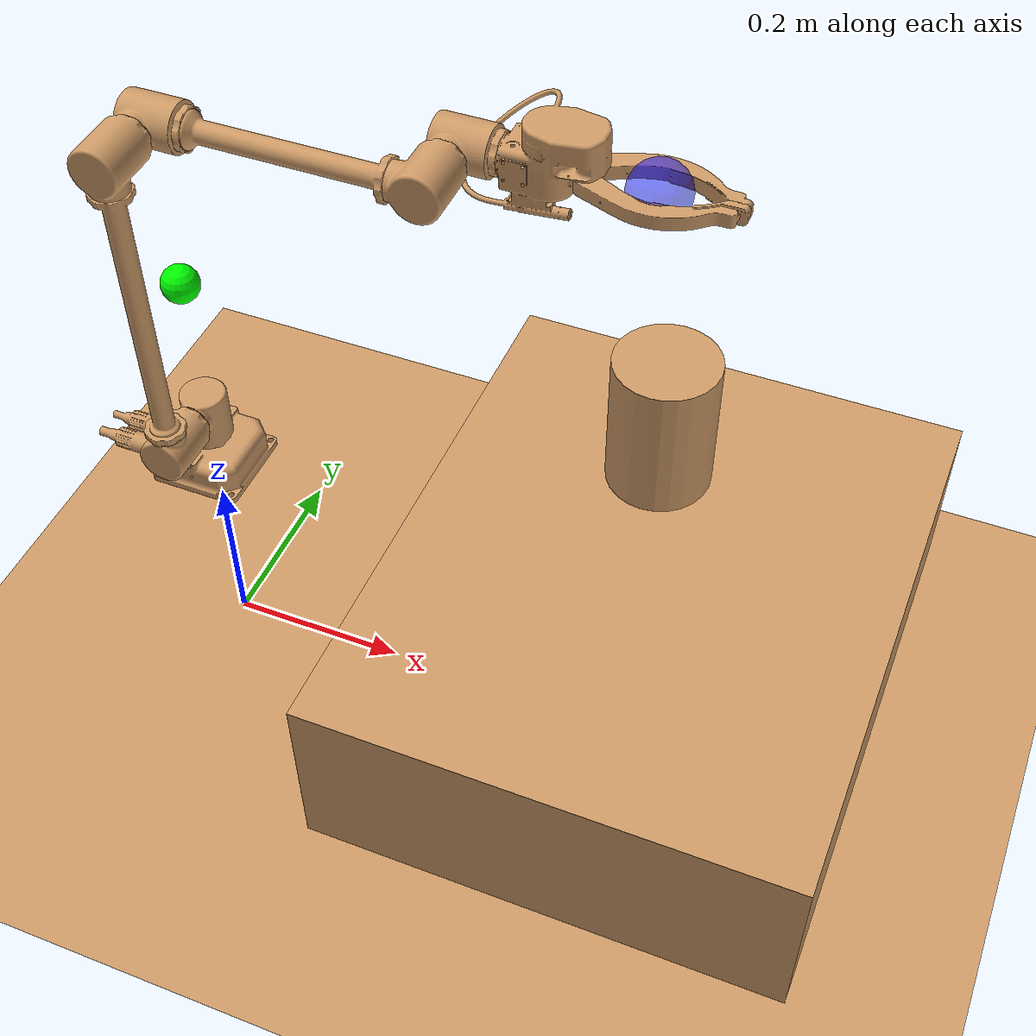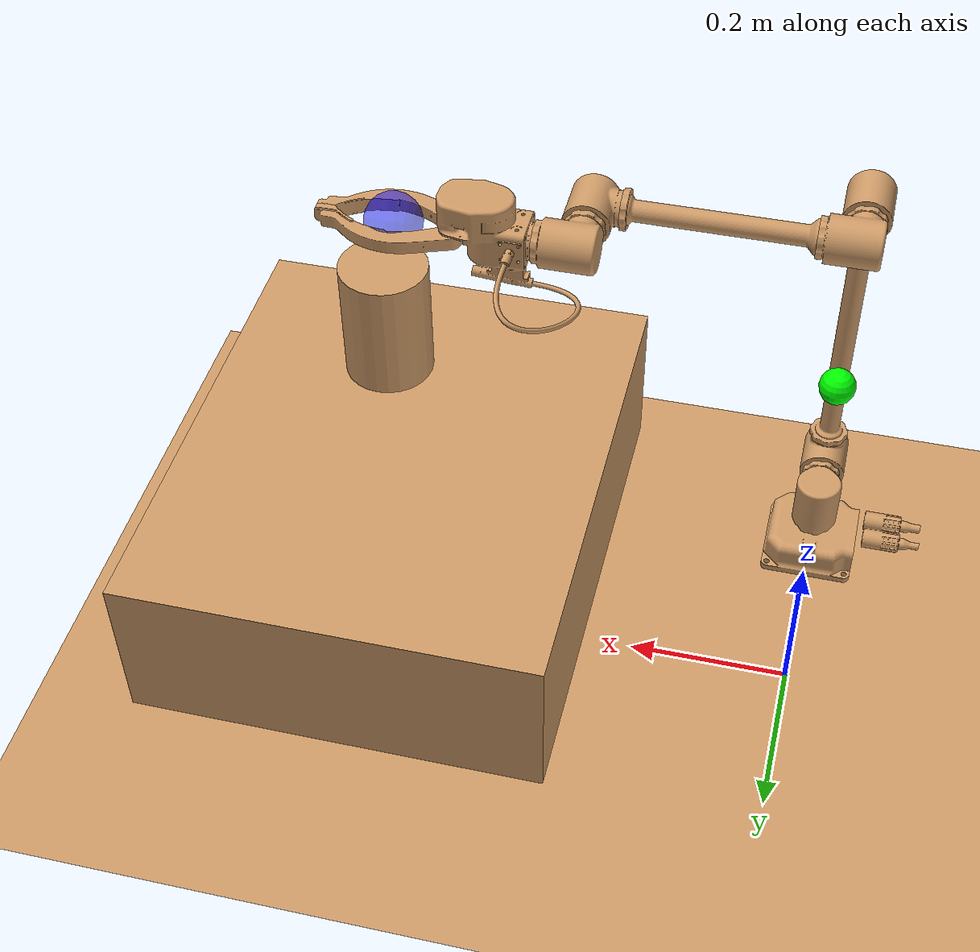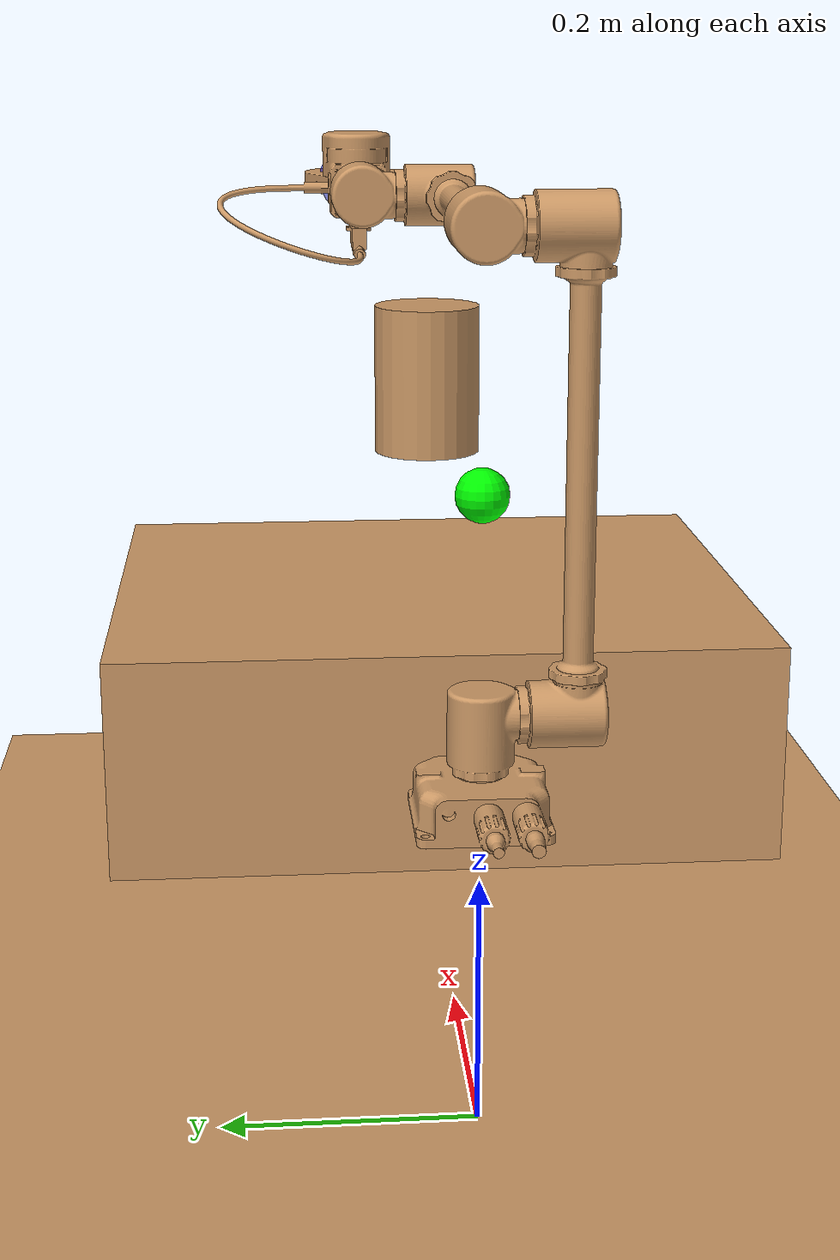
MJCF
<?xml version="1.0" encoding="utf-8"?>
<mujoco>
	<compiler angle="radian" coordinate="local" meshdir="./meshes" texturedir="./textures"></compiler>

	<option timestep="2e-3"
			iterations="10"
			tolerance="1e-10"
			impratio="10"
			gravity="0 0 -9.81"
			solver="Newton"
			cone="elliptic" />
	<size nuserdata="100" njmax="500" nconmax="1000" nstack="600000" nuser_body="9" nuser_jnt="1" nuser_site="1" nuser_tendon="1" nuser_actuator="12" nuser_sensor="1" />

	<visual>
		<map fogstart="3" fogend="5" force="0.1" znear="0.1"/>
		<quality shadowsize="2048" offsamples="8"/>
		<global offwidth="800" offheight="800"/>
	</visual>

	<include file="shared.xml"></include>

	<worldbody>

		<geom name="floor0" pos="0. 0. 0." size="3 3 .125" type="plane" condim="3" material="floorplane"></geom>
		<body name="floor0" pos="0. 0. 0.0">
			<site name="target0" pos="0 0 0.5" size="0.02 0.02 0.02" rgba="0 1 0 1" type="sphere"></site>
		</body>

        <camera name="track" mode="trackcom" pos="0 -3 0.3" xyaxes="1 0 0 0 0 1"/>

		<include file="robot_fixed.xml"></include>

		<body pos="0.5 -0. 0.2" name="table0">
			<geom size="0.25 0.3 0.1" type="box" mass="2000" material="table_mat"></geom>
			<geom size="0.25 0.3 0.1" type="box" mass="2000" group="1" material="table_mat"></geom>
		</body>

		<body name="object0" pos="0.5 -0. 0.5">
			<joint name="object0:joint" type="free" damping="0.01"></joint>
			<geom size="0.05 0.07" type="cylinder" contype='1' conaffinity='1' margin='0.001' solimp='0.99 0.99 0.01' solref='0.01 1' condim="4" name="object0_visual" material="block_mat" mass="2" group="1" friction="1 .001 .001" ></geom>
			<geom size="0.05 0.07" type="cylinder" contype='1' conaffinity='1' margin='0.001' solimp='0.99 0.99 0.01' solref='0.01 1' condim="4" name="object0_collision" material="block_mat" mass="2" group="0" friction="1 .001 .001" ></geom>

			<site name="object0" pos="0 0 0" size="0.02 0.02 0.02" rgba="1 0 0 1" type="sphere"></site>
		</body>

		<light directional="true" ambient="0.2 0.2 0.2" diffuse="0.8 0.8 0.8" specular="0.3 0.3 0.3" castshadow="false" pos="0 0 4" dir="0 0 -1" name="light0"></light>

	</worldbody>

    <actuator>
      <position ctrllimited="true" ctrlrange="-2.0000 2.0000" joint="hdt_drive1_joint" kp="10000"/>
      <position ctrllimited="true" ctrlrange="-1.5708 1.5708" joint="hdt_drive2_joint" kp="20000"/>
      <position ctrllimited="true" ctrlrange="-3.0708 1.2708" joint="hdt_drive3_joint" kp="20000"/>
      <position ctrllimited="true" ctrlrange="-2.5708 2.5708" joint="hdt_drive4_joint" kp="5000"/>
      <position ctrllimited="true" ctrlrange="-1.5708 1.5708" joint="hdt_drive5_joint" kp="5000"/>
      <position ctrllimited="true" ctrlrange="-1.5708 2.5708" joint="hdt_drive6_joint" kp="5000"/>

        <!--Gripper-->
        <!-- position control mode -->
        <position name='finger_1' ctrllimited="true" kp="50" joint='hdt_pincer_joint1' ctrlrange='0 0.5'/>
        <position name='finger_2' ctrllimited="true" kp="50" joint='hdt_pincer_joint2' ctrlrange='0 0.5'/>

        <!-- force control mode -->

    </actuator>

</mujoco>

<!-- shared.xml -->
<mujoco>
    <asset>
        <texture builtin="gradient" height="256" rgb1=".9 .9 1." rgb2=".2 .3 .4" type="skybox" width="256"/>
        <texture builtin="checker" height="512" name="texplane" rgb1=".2 .3 .4" rgb2=".1 0.15 0.2" type="2d" width="512"/>
        <material name="floorplane" reflectance="0.5" texrepeat="1 1" texture="texplane" texuniform="true"/>

        <texture builtin="flat" height="1278" mark="cross" markrgb="1 1 1" name="texgeom" random="0.01" rgb1="0.8 0.6 0.4" rgb2="0.8 0.6 0.4" type="cube" width="127"/>
        <texture type="skybox" builtin="gradient" rgb1="0.44 0.85 0.56" rgb2="0.46 0.87 0.58" width="32" height="32"></texture>
        <texture name="texture_block" file="block.png" gridsize="3 4" gridlayout=".U..LFRB.D.."></texture>

        <material name="floor_mat" specular="0" shininess="0.5" reflectance="0" rgba="0.2 0.2 0.2 1"></material>
        <material name="table_mat" specular="0" shininess="0.5" reflectance="0" rgba="0.93 0.93 0.93 1"></material>
        <material name="block_mat" specular="0" shininess="0.5" reflectance="0" rgba="0.2 0.2 0.2 1"></material>
        <material name="puck_mat" specular="0" shininess="0.5" reflectance="0" rgba="0.2 0.2 0.2 1"></material>
        <material name="MatPlane" reflectance="0.5" shininess="1" specular="1" texrepeat="60 60" texture="texplane"/>
        <material name="geom" texture="texgeom" texuniform="true"/>
        <material name="robot0:geomMat" shininess="0.03" specular="0.4"></material>

        <mesh name="H026994 - A35 M-2 PEDESTAL ASSY - SHAREABLE" file="H026994 - A35 M-2 PEDESTAL ASSY - SHAREABLE.STL" />
        <mesh name="H024840 - A35 M-2 DRIVE MODULE, SHAREABLE" file="H024840 - A35 M-2 DRIVE MODULE, SHAREABLE.STL" />
        <mesh name="H024847 - A35 M-2 PROXIMAL TUBE ASSY - SHAREABLE" file="H024847 - A35 M-2 PROXIMAL TUBE ASSY - SHAREABLE.STL" />
        <mesh name="H024848 - A35 M-2 DISTAL TUBE ASSY - SHAREABLE" file="H024848 - A35 M-2 DISTAL TUBE ASSY - SHAREABLE.STL" />
        <mesh name="H024842 - A35 M-2 PINCER ASSY - SHAREABLE, UNDERWATER" file="H024842 - A35 M-2 PINCER ASSY - SHAREABLE, UNDERWATER.STL" />
        <mesh name="H022927 - A35 PINCER FINGER, LONG, OVERMOLD ASSY - SHAREABLE" file="H022927 - A35 PINCER FINGER, LONG, OVERMOLD ASSY - SHAREABLE.STL" />

    </asset>

    <equality>
    <!-- contrl the end-effector using mocap body, cartesion control -->
    <!-- TODO: thumb_base need to change -->
    </equality>

    <contact>
        <exclude body1="robot0:base_link" body2="drive1_link"></exclude>
        <exclude body1="drive1_link" body2="drive2_link"></exclude>
        <exclude body1="drive2_link" body2="drive3_link"></exclude>
        <exclude body1="drive3_link" body2="drive4_link"></exclude>
        <exclude body1="drive4_link" body2="drive5_link"></exclude>
        <exclude body1="drive5_link" body2="ee_link"></exclude>
        <exclude body1="ee_link" body2="pincer_link1"></exclude>
        <exclude body1="ee_link" body2="pincer_link2"></exclude>
        <exclude body1="pincer_link1" body2="pincer_link2"></exclude>
    </contact>

    <default>

        <geom contype='1' conaffinity='1' margin="0.001" solimp="0.99 0.99 0.01" solref="0.01 1" condim="4" rgba="0.8 0.6 0.4 1"/>
        <joint armature="1" damping="1" />

        <default class="robot0:hdt_arm">
            <geom margin="0.001" material="robot0:geomMat" rgba="1 1 1 1" solimp="0.99 0.99 0.01" solref="0.01 1" type="mesh" user="0"></geom>
            <joint armature="1" damping="50" frictionloss="0" stiffness="0"></joint>

            <default class="robot0:hdt_gripper">
                <geom condim="4" margin="0.001" type="box" user="0" rgba="0.356 0.361 0.376 1.0"></geom>
                <joint armature="100" damping="1000" limited="true" solimplimit="0.99 0.999 0.01" solreflimit="0.01 1" type="slide"></joint>
            </default>

            <default class="robot0:grey">
                <geom rgba="0.356 0.361 0.376 1.0"></geom>
            </default>
            <default class="robot0:blue">
                <geom rgba="0.086 0.506 0.767 1.0"></geom>
            </default>
        </default>
    </default>

</mujoco>

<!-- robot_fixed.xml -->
<mujoco>
    <body name="robot0:base_link" pos="0. 0. 0.25">

        <geom type="mesh" mesh="H026994 - A35 M-2 PEDESTAL ASSY - SHAREABLE" />
        <geom type="mesh" contype="0" conaffinity="0" group="1" rgba="0.784314 0.784314 0.784314 1" mesh="H026994 - A35 M-2 PEDESTAL ASSY - SHAREABLE" />
        <body name="drive1_link" pos="0 0 0.08335" quat="0.707107 0 0 -0.707107">
            <inertial pos="0 0 0" mass="1" diaginertia="0.005 0.005 0.005" />
            <joint name="hdt_drive1_joint" pos="0 0 0" axis="0 0 1" limited="true" range="-6.28319 6.28319" damping="150" />
            <geom type="mesh" mesh="H024840 - A35 M-2 DRIVE MODULE, SHAREABLE" />
            <geom type="mesh" contype="0" conaffinity="0" group="1" rgba="0.784314 0.784314 0.784314 1" mesh="H024840 - A35 M-2 DRIVE MODULE, SHAREABLE" />
            <body name="drive2_link" pos="0.07155 0 0" quat="0.707107 0 -0.707107 0">
                <inertial pos="0.17855 0 0" quat="0.5 0.5 0.5 0.5" mass="3" diaginertia="0.0787602 0.0787602 0.015" />
                <joint name="hdt_drive2_joint" pos="0 0 0" axis="0 0 1" limited="true" range="-1.5708 1.5708" damping="150" />
                <geom quat="0 1 0 0" type="mesh" mesh="H024840 - A35 M-2 DRIVE MODULE, SHAREABLE" />
                <geom quat="0 1 0 0" type="mesh" contype="0" conaffinity="0" group="1" rgba="0.784314 0.784314 0.784314 1" mesh="H024840 - A35 M-2 DRIVE MODULE, SHAREABLE" />
                <geom pos="0.17855 0 0" type="mesh" mesh="H024847 - A35 M-2 PROXIMAL TUBE ASSY - SHAREABLE" />
                <geom pos="0.17855 0 0" type="mesh" contype="0" conaffinity="0" group="1" rgba="0.784314 0.784314 0.784314 1" mesh="H024847 - A35 M-2 PROXIMAL TUBE ASSY - SHAREABLE" />
                <geom pos="0.3571 0 0" quat="0 0 1 0" type="mesh" mesh="H024840 - A35 M-2 DRIVE MODULE, SHAREABLE" />
                <geom pos="0.3571 0 0" quat="0 0 1 0" type="mesh" contype="0" conaffinity="0" group="1" rgba="0.784314 0.784314 0.784314 1" mesh="H024840 - A35 M-2 DRIVE MODULE, SHAREABLE" />
                <body name="drive3_link" pos="0.3571 0 0.07155">
                    <inertial pos="0 0 0" quat="0.5 0.5 0.5 -0.5" mass="1" diaginertia="0.005 0.005 0.005" />
                    <joint name="hdt_drive3_joint" pos="0 0 0" axis="0 0 1" limited="true" range="-4.49 1.35" damping="150" />
                    <geom quat="0.5 0.5 0.5 -0.5" type="mesh" mesh="H024840 - A35 M-2 DRIVE MODULE, SHAREABLE" />
                    <geom quat="0.5 0.5 0.5 -0.5" type="mesh" contype="0" conaffinity="0" group="1" rgba="0.784314 0.784314 0.784314 1" mesh="H024840 - A35 M-2 DRIVE MODULE, SHAREABLE" />
                    <body name="drive4_link" pos="0 0.142 0" quat="0.707107 -0.707107 0 0">
                        <inertial pos="0 0 0.064775" mass="2" diaginertia="0.0183916 0.0183916 0.01" />
                        <joint name="hdt_drive4_joint" pos="0 0 0" axis="0 0 1" limited="true" range="-6.28319 6.28319" damping="70" />
                        <geom quat="0 1 0 0" type="mesh" mesh="H024848 - A35 M-2 DISTAL TUBE ASSY - SHAREABLE" />
                        <geom quat="0 1 0 0" type="mesh" contype="0" conaffinity="0" group="1" rgba="0.784314 0.784314 0.784314 1" mesh="H024848 - A35 M-2 DISTAL TUBE ASSY - SHAREABLE" />
                        <geom pos="0 0 0.12955" quat="-0.5 0.5 -0.5 -0.5" type="mesh" mesh="H024840 - A35 M-2 DRIVE MODULE, SHAREABLE" />
                        <geom pos="0 0 0.12955" quat="-0.5 0.5 -0.5 -0.5" type="mesh" contype="0" conaffinity="0" group="1" rgba="0.784314 0.784314 0.784314 1" mesh="H024840 - A35 M-2 DRIVE MODULE, SHAREABLE" />
                        <body name="drive5_link" pos="0 -0.07155 0.12955" quat="-0.5 -0.5 0.5 -0.5">
                            <inertial pos="0 0 0" mass="1" diaginertia="0.005 0.005 0.005" />
                            <joint name="hdt_drive5_joint" pos="0 0 0" axis="0 0 1" limited="true" range="-6.28319 6.28319" damping="70" />
                            <geom quat="0 -0.707107 0 0.707107" type="mesh" mesh="H024840 - A35 M-2 DRIVE MODULE, SHAREABLE" />
                            <geom quat="0 -0.707107 0 0.707107" type="mesh" contype="0" conaffinity="0" group="1" rgba="0.784314 0.784314 0.784314 1" mesh="H024840 - A35 M-2 DRIVE MODULE, SHAREABLE" />
                            <body name="ee_link" pos="0.0885 0 0" quat="0.707107 0 0.707107 0">
                                <inertial pos="0 0 0" mass="1" diaginertia="0.005 0.005 0.005" />
                                <joint name="hdt_drive6_joint" pos="0 0 0" axis="0 0 1" limited="true" range="-6.28319 6.28319" damping="70" />
                                <geom quat="0.5 0.5 0.5 -0.5" type="mesh" mesh="H024842 - A35 M-2 PINCER ASSY - SHAREABLE, UNDERWATER" />
                                <geom quat="0.5 0.5 0.5 -0.5" type="mesh" contype="0" conaffinity="0" group="1" rgba="0.784314 0.784314 0.784314 1" mesh="H024842 - A35 M-2 PINCER ASSY - SHAREABLE, UNDERWATER" />

                                <site name="r_grip_site" pos="0.0 0. 0.1" size="0.03" rgba="0 0 1 0.5" type="sphere" group="1"/>

                                <body name="pincer_link1" pos="0.0135 0 0.0375" quat="0.5 -0.5 -0.5 -0.5">
                                    <inertial pos="0.0607647 0.00559547 -3.99908e-06" quat="0.0177323 0.706938 -0.0180733 0.706822" mass="0.0659882" diaginertia="0.00012599 0.000120886 7.08563e-06" />
                                    <joint name="hdt_pincer_joint1" pos="0 0 0" axis="0 0 1" limited="true" range="-0.2 0.9" damping="15" />
                                    <geom quat="0 1 0 0" type="mesh" mesh="H022927 - A35 PINCER FINGER, LONG, OVERMOLD ASSY - SHAREABLE" />
                                    <geom quat="0 1 0 0" type="mesh" contype="0" conaffinity="0" group="1" rgba="0.784314 0.784314 0.784314 1" mesh="H022927 - A35 PINCER FINGER, LONG, OVERMOLD ASSY - SHAREABLE" />
                                </body>
                                <body name="pincer_link2" pos="-0.0135 0 0.0375" quat="0.5 0.5 -0.5 0.5">
                                    <inertial pos="0.0607647 0.00559547 -3.99908e-06" quat="0.0177323 0.706938 -0.0180733 0.706822" mass="0.0659882" diaginertia="0.00012599 0.000120886 7.08563e-06" />
                                    <joint name="hdt_pincer_joint2" pos="0 0 0" axis="0 0 1" limited="true" range="-0.2 1" damping="7" />
                                    <geom quat="0 1 0 0" type="mesh" mesh="H022927 - A35 PINCER FINGER, LONG, OVERMOLD ASSY - SHAREABLE" />
                                    <geom quat="0 1 0 0" type="mesh" contype="0" conaffinity="0" group="1" rgba="0.784314 0.784314 0.784314 1" mesh="H022927 - A35 PINCER FINGER, LONG, OVERMOLD ASSY - SHAREABLE" />
                                </body>
                            </body>
                        </body>
                    </body>
                </body>
            </body>
        </body>
    </body>
</mujoco>
